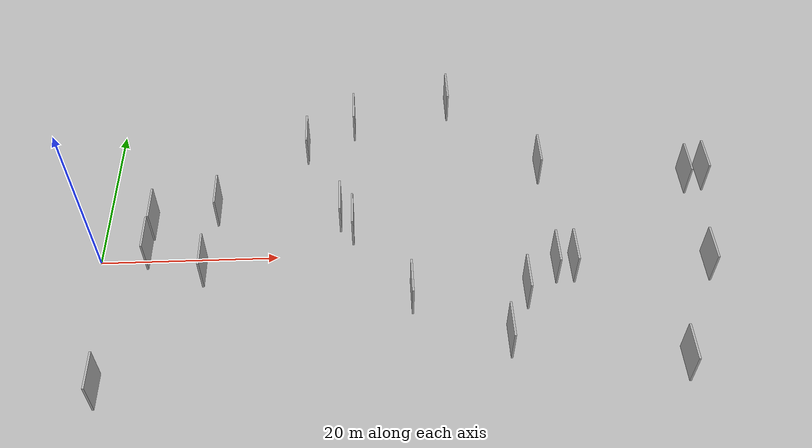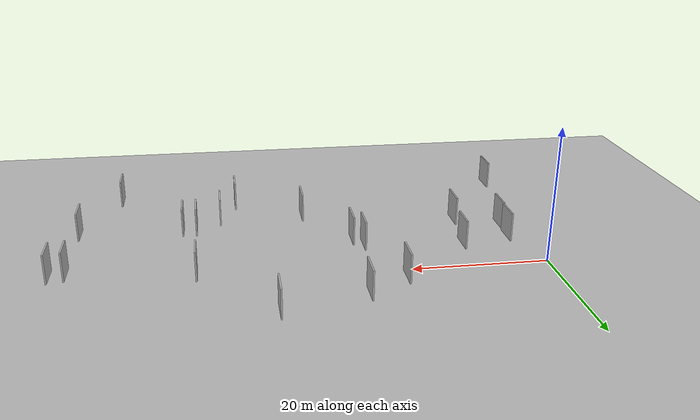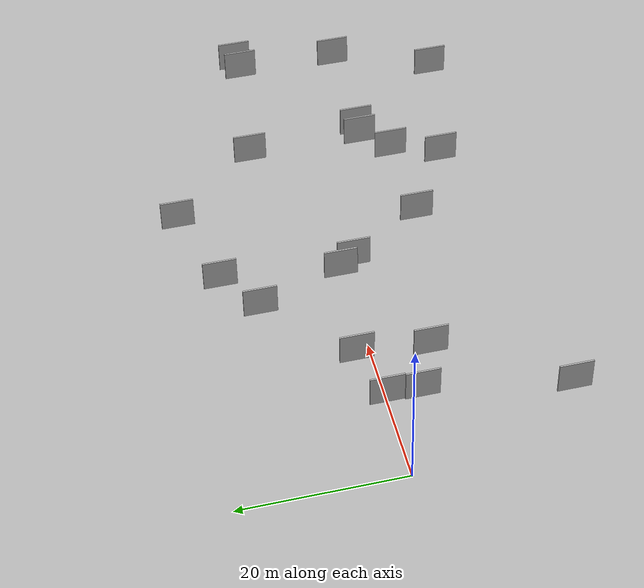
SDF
<?xml version="1.0" encoding="utf-8"?>

<sdf version="1.6">

   <world name="default">

      <gui fullscreen="0">

         <camera name="user_camera">

            <pose>-15 0 4.57585 0 0 0</pose>

            <view_controller>orbit</view_controller>

         </camera>

      </gui>

      <scene>

         <sky>

           <clouds>

             <speed>12</speed>

           </clouds>

         </sky>

         <ambient>0.4 0.4 0.4 1</ambient>

         <background>0.7 0.7 0.7 1</background>

         <shadows>1</shadows>

      </scene>

      <gravity>0 0 -9.8066</gravity>

      <magnetic_field>6e-06 2.3e-05 -4.2e-05</magnetic_field>

      <physics default="0" name="default_physics" type="ode">

         <ode>

            <solver>

               <type>quick</type>

               <iters>10</iters>

               <sor>1.0</sor>

               <use_dynamic_moi_rescaling>0</use_dynamic_moi_rescaling>

            </solver>

            <constraints>

               <cfm>0</cfm>

               <erp>0.2</erp>

               <contact_max_correcting_vel>100</contact_max_correcting_vel>

               <contact_surface_layer>0.001</contact_surface_layer>

            </constraints>

         </ode>

         <max_step_size>0.004</max_step_size>

         <real_time_factor>1</real_time_factor>

         <real_time_update_rate>250</real_time_update_rate>

      </physics>

      <light name="sun" type="directional">

         <cast_shadows>1</cast_shadows>

         <pose>0 0 10 0 0 0</pose>

         <diffuse>0.8 0.8 0.8 1</diffuse>

         <specular>0.2 0.2 0.2 1</specular>

         <attenuation>

            <range>1000</range>

            <constant>0.9</constant>

            <linear>0.01</linear>

            <quadratic>0.001</quadratic>

         </attenuation>

         <direction>-0.5 0.1 -0.9</direction>

      </light>

      <include>

         <name>ground_plane_1</name>

         <uri>model://HANNAS_ground_plane</uri>

         <pose>0 0 0  0 0 0</pose>

      </include>

      <include>

         <name>ground_plane_2</name>

         <uri>model://HANNAS_ground_plane</uri>

         <pose>100 0 0  0 0 0</pose>

      </include>

      <model name="HANNAS_wall_1">

         <static>1</static>

         <pose frame="">46.5897 -9.6157 5.0 0.000000 0.000000 1.570796</pose>

         <link name="link">

            <pose frame="">0 0 2.00 0 0 0</pose>

            <collision name="collision">

               <geometry>

                  <box>

                     <size>4.00 0.2 4.00</size>

                  </box>

               </geometry>

               <max_contacts>10</max_contacts>

               <surface>

                  <contact>

                     <ode/>

                  </contact>

                  <bounce/>

                  <friction>

                     <torsional>

                        <ode/>

                     </torsional>

                     <ode/>

                  </friction>

               </surface>

            </collision>

            <visual name="visual">

               <cast_shadows>0</cast_shadows>

               <geometry>

                  <box>

                     <size>4.00 0.2 4.00</size>

                  </box>

               </geometry>

               <material>

                  <script>

                     <uri>model://HANNAS_wall/materials/scripts</uri>

                     <uri>model://HANNAS_wall/materials/textures</uri>

                     <name>vrc/HANNAS_wall</name>

                  </script>

               </material>

            </visual>

            <self_collide>0</self_collide>

            <enable_wind>0</enable_wind>

            <kinematic>0</kinematic>

         </link>

      </model>

      <model name="HANNAS_wall_2">

         <static>1</static>

         <pose frame="">51.8691 -6.4325 5.0 0.000000 0.000000 1.570796</pose>

         <link name="link">

            <pose frame="">0 0 2.00 0 0 0</pose>

            <collision name="collision">

               <geometry>

                  <box>

                     <size>4.00 0.2 4.00</size>

                  </box>

               </geometry>

               <max_contacts>10</max_contacts>

               <surface>

                  <contact>

                     <ode/>

                  </contact>

                  <bounce/>

                  <friction>

                     <torsional>

                        <ode/>

                     </torsional>

                     <ode/>

                  </friction>

               </surface>

            </collision>

            <visual name="visual">

               <cast_shadows>0</cast_shadows>

               <geometry>

                  <box>

                     <size>4.00 0.2 4.00</size>

                  </box>

               </geometry>

               <material>

                  <script>

                     <uri>model://HANNAS_wall/materials/scripts</uri>

                     <uri>model://HANNAS_wall/materials/textures</uri>

                     <name>vrc/HANNAS_wall</name>

                  </script>

               </material>

            </visual>

            <self_collide>0</self_collide>

            <enable_wind>0</enable_wind>

            <kinematic>0</kinematic>

         </link>

      </model>

      <model name="HANNAS_wall_3">

         <static>1</static>

         <pose frame="">12.9789 -5.5692 5.0 0.000000 0.000000 1.570796</pose>

         <link name="link">

            <pose frame="">0 0 2.00 0 0 0</pose>

            <collision name="collision">

               <geometry>

                  <box>

                     <size>4.00 0.2 4.00</size>

                  </box>

               </geometry>

               <max_contacts>10</max_contacts>

               <surface>

                  <contact>

                     <ode/>

                  </contact>

                  <bounce/>

                  <friction>

                     <torsional>

                        <ode/>

                     </torsional>

                     <ode/>

                  </friction>

               </surface>

            </collision>

            <visual name="visual">

               <cast_shadows>0</cast_shadows>

               <geometry>

                  <box>

                     <size>4.00 0.2 4.00</size>

                  </box>

               </geometry>

               <material>

                  <script>

                     <uri>model://HANNAS_wall/materials/scripts</uri>

                     <uri>model://HANNAS_wall/materials/textures</uri>

                     <name>vrc/HANNAS_wall</name>

                  </script>

               </material>

            </visual>

            <self_collide>0</self_collide>

            <enable_wind>0</enable_wind>

            <kinematic>0</kinematic>

         </link>

      </model>

      <model name="HANNAS_wall_4">

         <static>1</static>

         <pose frame="">3.8547 -19.6435 5.0 0.000000 0.000000 1.570796</pose>

         <link name="link">

            <pose frame="">0 0 2.00 0 0 0</pose>

            <collision name="collision">

               <geometry>

                  <box>

                     <size>4.00 0.2 4.00</size>

                  </box>

               </geometry>

               <max_contacts>10</max_contacts>

               <surface>

                  <contact>

                     <ode/>

                  </contact>

                  <bounce/>

                  <friction>

                     <torsional>

                        <ode/>

                     </torsional>

                     <ode/>

                  </friction>

               </surface>

            </collision>

            <visual name="visual">

               <cast_shadows>0</cast_shadows>

               <geometry>

                  <box>

                     <size>4.00 0.2 4.00</size>

                  </box>

               </geometry>

               <material>

                  <script>

                     <uri>model://HANNAS_wall/materials/scripts</uri>

                     <uri>model://HANNAS_wall/materials/textures</uri>

                     <name>vrc/HANNAS_wall</name>

                  </script>

               </material>

            </visual>

            <self_collide>0</self_collide>

            <enable_wind>0</enable_wind>

            <kinematic>0</kinematic>

         </link>

      </model>

      <model name="HANNAS_wall_5">

         <static>1</static>

         <pose frame="">29.0336 15.4790 5.0 0.000000 0.000000 1.570796</pose>

         <link name="link">

            <pose frame="">0 0 2.00 0 0 0</pose>

            <collision name="collision">

               <geometry>

                  <box>

                     <size>4.00 0.2 4.00</size>

                  </box>

               </geometry>

               <max_contacts>10</max_contacts>

               <surface>

                  <contact>

                     <ode/>

                  </contact>

                  <bounce/>

                  <friction>

                     <torsional>

                        <ode/>

                     </torsional>

                     <ode/>

                  </friction>

               </surface>

            </collision>

            <visual name="visual">

               <cast_shadows>0</cast_shadows>

               <geometry>

                  <box>

                     <size>4.00 0.2 4.00</size>

                  </box>

               </geometry>

               <material>

                  <script>

                     <uri>model://HANNAS_wall/materials/scripts</uri>

                     <uri>model://HANNAS_wall/materials/textures</uri>

                     <name>vrc/HANNAS_wall</name>

                  </script>

               </material>

            </visual>

            <self_collide>0</self_collide>

            <enable_wind>0</enable_wind>

            <kinematic>0</kinematic>

         </link>

      </model>

      <model name="HANNAS_wall_6">

         <static>1</static>

         <pose frame="">66.1604 -6.7629 5.0 0.000000 0.000000 1.570796</pose>

         <link name="link">

            <pose frame="">0 0 2.00 0 0 0</pose>

            <collision name="collision">

               <geometry>

                  <box>

                     <size>4.00 0.2 4.00</size>

                  </box>

               </geometry>

               <max_contacts>10</max_contacts>

               <surface>

                  <contact>

                     <ode/>

                  </contact>

                  <bounce/>

                  <friction>

                     <torsional>

                        <ode/>

                     </torsional>

                     <ode/>

                  </friction>

               </surface>

            </collision>

            <visual name="visual">

               <cast_shadows>0</cast_shadows>

               <geometry>

                  <box>

                     <size>4.00 0.2 4.00</size>

                  </box>

               </geometry>

               <material>

                  <script>

                     <uri>model://HANNAS_wall/materials/scripts</uri>

                     <uri>model://HANNAS_wall/materials/textures</uri>

                     <name>vrc/HANNAS_wall</name>

                  </script>

               </material>

            </visual>

            <self_collide>0</self_collide>

            <enable_wind>0</enable_wind>

            <kinematic>0</kinematic>

         </link>

      </model>

      <model name="HANNAS_wall_7">

         <static>1</static>

         <pose frame="">28.7268 -0.4968 5.0 0.000000 0.000000 1.570796</pose>

         <link name="link">

            <pose frame="">0 0 2.00 0 0 0</pose>

            <collision name="collision">

               <geometry>

                  <box>

                     <size>4.00 0.2 4.00</size>

                  </box>

               </geometry>

               <max_contacts>10</max_contacts>

               <surface>

                  <contact>

                     <ode/>

                  </contact>

                  <bounce/>

                  <friction>

                     <torsional>

                        <ode/>

                     </torsional>

                     <ode/>

                  </friction>

               </surface>

            </collision>

            <visual name="visual">

               <cast_shadows>0</cast_shadows>

               <geometry>

                  <box>

                     <size>4.00 0.2 4.00</size>

                  </box>

               </geometry>

               <material>

                  <script>

                     <uri>model://HANNAS_wall/materials/scripts</uri>

                     <uri>model://HANNAS_wall/materials/textures</uri>

                     <name>vrc/HANNAS_wall</name>

                  </script>

               </material>

            </visual>

            <self_collide>0</self_collide>

            <enable_wind>0</enable_wind>

            <kinematic>0</kinematic>

         </link>

      </model>

      <model name="HANNAS_wall_8">

         <static>1</static>

         <pose frame="">44.2396 -15.4616 5.0 0.000000 0.000000 1.570796</pose>

         <link name="link">

            <pose frame="">0 0 2.00 0 0 0</pose>

            <collision name="collision">

               <geometry>

                  <box>

                     <size>4.00 0.2 4.00</size>

                  </box>

               </geometry>

               <max_contacts>10</max_contacts>

               <surface>

                  <contact>

                     <ode/>

                  </contact>

                  <bounce/>

                  <friction>

                     <torsional>

                        <ode/>

                     </torsional>

                     <ode/>

                  </friction>

               </surface>

            </collision>

            <visual name="visual">

               <cast_shadows>0</cast_shadows>

               <geometry>

                  <box>

                     <size>4.00 0.2 4.00</size>

                  </box>

               </geometry>

               <material>

                  <script>

                     <uri>model://HANNAS_wall/materials/scripts</uri>

                     <uri>model://HANNAS_wall/materials/textures</uri>

                     <name>vrc/HANNAS_wall</name>

                  </script>

               </material>

            </visual>

            <self_collide>0</self_collide>

            <enable_wind>0</enable_wind>

            <kinematic>0</kinematic>

         </link>

      </model>

      <model name="HANNAS_wall_9">

         <static>1</static>

         <pose frame="">23.6025 11.8069 5.0 0.000000 0.000000 1.570796</pose>

         <link name="link">

            <pose frame="">0 0 2.00 0 0 0</pose>

            <collision name="collision">

               <geometry>

                  <box>

                     <size>4.00 0.2 4.00</size>

                  </box>

               </geometry>

               <max_contacts>10</max_contacts>

               <surface>

                  <contact>

                     <ode/>

                  </contact>

                  <bounce/>

                  <friction>

                     <torsional>

                        <ode/>

                     </torsional>

                     <ode/>

                  </friction>

               </surface>

            </collision>

            <visual name="visual">

               <cast_shadows>0</cast_shadows>

               <geometry>

                  <box>

                     <size>4.00 0.2 4.00</size>

                  </box>

               </geometry>

               <material>

                  <script>

                     <uri>model://HANNAS_wall/materials/scripts</uri>

                     <uri>model://HANNAS_wall/materials/textures</uri>

                     <name>vrc/HANNAS_wall</name>

                  </script>

               </material>

            </visual>

            <self_collide>0</self_collide>

            <enable_wind>0</enable_wind>

            <kinematic>0</kinematic>

         </link>

      </model>

      <model name="HANNAS_wall_10">

         <static>1</static>

         <pose frame="">34.7187 -9.7975 5.0 0.000000 0.000000 1.570796</pose>

         <link name="link">

            <pose frame="">0 0 2.00 0 0 0</pose>

            <collision name="collision">

               <geometry>

                  <box>

                     <size>4.00 0.2 4.00</size>

                  </box>

               </geometry>

               <max_contacts>10</max_contacts>

               <surface>

                  <contact>

                     <ode/>

                  </contact>

                  <bounce/>

                  <friction>

                     <torsional>

                        <ode/>

                     </torsional>

                     <ode/>

                  </friction>

               </surface>

            </collision>

            <visual name="visual">

               <cast_shadows>0</cast_shadows>

               <geometry>

                  <box>

                     <size>4.00 0.2 4.00</size>

                  </box>

               </geometry>

               <material>

                  <script>

                     <uri>model://HANNAS_wall/materials/scripts</uri>

                     <uri>model://HANNAS_wall/materials/textures</uri>

                     <name>vrc/HANNAS_wall</name>

                  </script>

               </material>

            </visual>

            <self_collide>0</self_collide>

            <enable_wind>0</enable_wind>

            <kinematic>0</kinematic>

         </link>

      </model>

      <model name="HANNAS_wall_11">

         <static>1</static>

         <pose frame="">40.2103 18.5304 5.0 0.000000 0.000000 1.570796</pose>

         <link name="link">

            <pose frame="">0 0 2.00 0 0 0</pose>

            <collision name="collision">

               <geometry>

                  <box>

                     <size>4.00 0.2 4.00</size>

                  </box>

               </geometry>

               <max_contacts>10</max_contacts>

               <surface>

                  <contact>

                     <ode/>

                  </contact>

                  <bounce/>

                  <friction>

                     <torsional>

                        <ode/>

                     </torsional>

                     <ode/>

                  </friction>

               </surface>

            </collision>

            <visual name="visual">

               <cast_shadows>0</cast_shadows>

               <geometry>

                  <box>

                     <size>4.00 0.2 4.00</size>

                  </box>

               </geometry>

               <material>

                  <script>

                     <uri>model://HANNAS_wall/materials/scripts</uri>

                     <uri>model://HANNAS_wall/materials/textures</uri>

                     <name>vrc/HANNAS_wall</name>

                  </script>

               </material>

            </visual>

            <self_collide>0</self_collide>

            <enable_wind>0</enable_wind>

            <kinematic>0</kinematic>

         </link>

      </model>

      <model name="HANNAS_wall_12">

         <static>1</static>

         <pose frame="">13.8999 2.7781 5.0 0.000000 0.000000 1.570796</pose>

         <link name="link">

            <pose frame="">0 0 2.00 0 0 0</pose>

            <collision name="collision">

               <geometry>

                  <box>

                     <size>4.00 0.2 4.00</size>

                  </box>

               </geometry>

               <max_contacts>10</max_contacts>

               <surface>

                  <contact>

                     <ode/>

                  </contact>

                  <bounce/>

                  <friction>

                     <torsional>

                        <ode/>

                     </torsional>

                     <ode/>

                  </friction>

               </surface>

            </collision>

            <visual name="visual">

               <cast_shadows>0</cast_shadows>

               <geometry>

                  <box>

                     <size>4.00 0.2 4.00</size>

                  </box>

               </geometry>

               <material>

                  <script>

                     <uri>model://HANNAS_wall/materials/scripts</uri>

                     <uri>model://HANNAS_wall/materials/textures</uri>

                     <name>vrc/HANNAS_wall</name>

                  </script>

               </material>

            </visual>

            <self_collide>0</self_collide>

            <enable_wind>0</enable_wind>

            <kinematic>0</kinematic>

         </link>

      </model>

      <model name="HANNAS_wall_13">

         <static>1</static>

         <pose frame="">49.9307 7.6581 5.0 0.000000 0.000000 1.570796</pose>

         <link name="link">

            <pose frame="">0 0 2.00 0 0 0</pose>

            <collision name="collision">

               <geometry>

                  <box>

                     <size>4.00 0.2 4.00</size>

                  </box>

               </geometry>

               <max_contacts>10</max_contacts>

               <surface>

                  <contact>

                     <ode/>

                  </contact>

                  <bounce/>

                  <friction>

                     <torsional>

                        <ode/>

                     </torsional>

                     <ode/>

                  </friction>

               </surface>

            </collision>

            <visual name="visual">

               <cast_shadows>0</cast_shadows>

               <geometry>

                  <box>

                     <size>4.00 0.2 4.00</size>

                  </box>

               </geometry>

               <material>

                  <script>

                     <uri>model://HANNAS_wall/materials/scripts</uri>

                     <uri>model://HANNAS_wall/materials/textures</uri>

                     <name>vrc/HANNAS_wall</name>

                  </script>

               </material>

            </visual>

            <self_collide>0</self_collide>

            <enable_wind>0</enable_wind>

            <kinematic>0</kinematic>

         </link>

      </model>

      <model name="HANNAS_wall_14">

         <static>1</static>

         <pose frame="">61.2396 -18.7305 5.0 0.000000 0.000000 1.570796</pose>

         <link name="link">

            <pose frame="">0 0 2.00 0 0 0</pose>

            <collision name="collision">

               <geometry>

                  <box>

                     <size>4.00 0.2 4.00</size>

                  </box>

               </geometry>

               <max_contacts>10</max_contacts>

               <surface>

                  <contact>

                     <ode/>

                  </contact>

                  <bounce/>

                  <friction>

                     <torsional>

                        <ode/>

                     </torsional>

                     <ode/>

                  </friction>

               </surface>

            </collision>

            <visual name="visual">

               <cast_shadows>0</cast_shadows>

               <geometry>

                  <box>

                     <size>4.00 0.2 4.00</size>

                  </box>

               </geometry>

               <material>

                  <script>

                     <uri>model://HANNAS_wall/materials/scripts</uri>

                     <uri>model://HANNAS_wall/materials/textures</uri>

                     <name>vrc/HANNAS_wall</name>

                  </script>

               </material>

            </visual>

            <self_collide>0</self_collide>

            <enable_wind>0</enable_wind>

            <kinematic>0</kinematic>

         </link>

      </model>

      <model name="HANNAS_wall_15">

         <static>1</static>

         <pose frame="">7.0506 1.0303 5.0 0.000000 0.000000 1.570796</pose>

         <link name="link">

            <pose frame="">0 0 2.00 0 0 0</pose>

            <collision name="collision">

               <geometry>

                  <box>

                     <size>4.00 0.2 4.00</size>

                  </box>

               </geometry>

               <max_contacts>10</max_contacts>

               <surface>

                  <contact>

                     <ode/>

                  </contact>

                  <bounce/>

                  <friction>

                     <torsional>

                        <ode/>

                     </torsional>

                     <ode/>

                  </friction>

               </surface>

            </collision>

            <visual name="visual">

               <cast_shadows>0</cast_shadows>

               <geometry>

                  <box>

                     <size>4.00 0.2 4.00</size>

                  </box>

               </geometry>

               <material>

                  <script>

                     <uri>model://HANNAS_wall/materials/scripts</uri>

                     <uri>model://HANNAS_wall/materials/textures</uri>

                     <name>vrc/HANNAS_wall</name>

                  </script>

               </material>

            </visual>

            <self_collide>0</self_collide>

            <enable_wind>0</enable_wind>

            <kinematic>0</kinematic>

         </link>

      </model>

      <model name="HANNAS_wall_16">

         <static>1</static>

         <pose frame="">27.3882 1.3855 5.0 0.000000 0.000000 1.570796</pose>

         <link name="link">

            <pose frame="">0 0 2.00 0 0 0</pose>

            <collision name="collision">

               <geometry>

                  <box>

                     <size>4.00 0.2 4.00</size>

                  </box>

               </geometry>

               <max_contacts>10</max_contacts>

               <surface>

                  <contact>

                     <ode/>

                  </contact>

                  <bounce/>

                  <friction>

                     <torsional>

                        <ode/>

                     </torsional>

                     <ode/>

                  </friction>

               </surface>

            </collision>

            <visual name="visual">

               <cast_shadows>0</cast_shadows>

               <geometry>

                  <box>

                     <size>4.00 0.2 4.00</size>

                  </box>

               </geometry>

               <material>

                  <script>

                     <uri>model://HANNAS_wall/materials/scripts</uri>

                     <uri>model://HANNAS_wall/materials/textures</uri>

                     <name>vrc/HANNAS_wall</name>

                  </script>

               </material>

            </visual>

            <self_collide>0</self_collide>

            <enable_wind>0</enable_wind>

            <kinematic>0</kinematic>

         </link>

      </model>

      <model name="HANNAS_wall_17">

         <static>1</static>

         <pose frame="">49.9851 -6.4682 5.0 0.000000 0.000000 1.570796</pose>

         <link name="link">

            <pose frame="">0 0 2.00 0 0 0</pose>

            <collision name="collision">

               <geometry>

                  <box>

                     <size>4.00 0.2 4.00</size>

                  </box>

               </geometry>

               <max_contacts>10</max_contacts>

               <surface>

                  <contact>

                     <ode/>

                  </contact>

                  <bounce/>

                  <friction>

                     <torsional>

                        <ode/>

                     </torsional>

                     <ode/>

                  </friction>

               </surface>

            </collision>

            <visual name="visual">

               <cast_shadows>0</cast_shadows>

               <geometry>

                  <box>

                     <size>4.00 0.2 4.00</size>

                  </box>

               </geometry>

               <material>

                  <script>

                     <uri>model://HANNAS_wall/materials/scripts</uri>

                     <uri>model://HANNAS_wall/materials/textures</uri>

                     <name>vrc/HANNAS_wall</name>

                  </script>

               </material>

            </visual>

            <self_collide>0</self_collide>

            <enable_wind>0</enable_wind>

            <kinematic>0</kinematic>

         </link>

      </model>

      <model name="HANNAS_wall_18">

         <static>1</static>

         <pose frame="">68.4308 5.9860 5.0 0.000000 0.000000 1.570796</pose>

         <link name="link">

            <pose frame="">0 0 2.00 0 0 0</pose>

            <collision name="collision">

               <geometry>

                  <box>

                     <size>4.00 0.2 4.00</size>

                  </box>

               </geometry>

               <max_contacts>10</max_contacts>

               <surface>

                  <contact>

                     <ode/>

                  </contact>

                  <bounce/>

                  <friction>

                     <torsional>

                        <ode/>

                     </torsional>

                     <ode/>

                  </friction>

               </surface>

            </collision>

            <visual name="visual">

               <cast_shadows>0</cast_shadows>

               <geometry>

                  <box>

                     <size>4.00 0.2 4.00</size>

                  </box>

               </geometry>

               <material>

                  <script>

                     <uri>model://HANNAS_wall/materials/scripts</uri>

                     <uri>model://HANNAS_wall/materials/textures</uri>

                     <name>vrc/HANNAS_wall</name>

                  </script>

               </material>

            </visual>

            <self_collide>0</self_collide>

            <enable_wind>0</enable_wind>

            <kinematic>0</kinematic>

         </link>

      </model>

      <model name="HANNAS_wall_19">

         <static>1</static>

         <pose frame="">66.3698 5.5886 5.0 0.000000 0.000000 1.570796</pose>

         <link name="link">

            <pose frame="">0 0 2.00 0 0 0</pose>

            <collision name="collision">

               <geometry>

                  <box>

                     <size>4.00 0.2 4.00</size>

                  </box>

               </geometry>

               <max_contacts>10</max_contacts>

               <surface>

                  <contact>

                     <ode/>

                  </contact>

                  <bounce/>

                  <friction>

                     <torsional>

                        <ode/>

                     </torsional>

                     <ode/>

                  </friction>

               </surface>

            </collision>

            <visual name="visual">

               <cast_shadows>0</cast_shadows>

               <geometry>

                  <box>

                     <size>4.00 0.2 4.00</size>

                  </box>

               </geometry>

               <material>

                  <script>

                     <uri>model://HANNAS_wall/materials/scripts</uri>

                     <uri>model://HANNAS_wall/materials/textures</uri>

                     <name>vrc/HANNAS_wall</name>

                  </script>

               </material>

            </visual>

            <self_collide>0</self_collide>

            <enable_wind>0</enable_wind>

            <kinematic>0</kinematic>

         </link>

      </model>

      <model name="HANNAS_wall_20">

         <static>1</static>

         <pose frame="">6.8813 -2.9836 5.0 0.000000 0.000000 1.570796</pose>

         <link name="link">

            <pose frame="">0 0 2.00 0 0 0</pose>

            <collision name="collision">

               <geometry>

                  <box>

                     <size>4.00 0.2 4.00</size>

                  </box>

               </geometry>

               <max_contacts>10</max_contacts>

               <surface>

                  <contact>

                     <ode/>

                  </contact>

                  <bounce/>

                  <friction>

                     <torsional>

                        <ode/>

                     </torsional>

                     <ode/>

                  </friction>

               </surface>

            </collision>

            <visual name="visual">

               <cast_shadows>0</cast_shadows>

               <geometry>

                  <box>

                     <size>4.00 0.2 4.00</size>

                  </box>

               </geometry>

               <material>

                  <script>

                     <uri>model://HANNAS_wall/materials/scripts</uri>

                     <uri>model://HANNAS_wall/materials/textures</uri>

                     <name>vrc/HANNAS_wall</name>

                  </script>

               </material>

            </visual>

            <self_collide>0</self_collide>

            <enable_wind>0</enable_wind>

            <kinematic>0</kinematic>

         </link>

      </model>

   </world>

</sdf>

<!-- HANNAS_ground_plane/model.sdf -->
<sdf version="1.4">
<model name="HANNAS_ground_plane">
  <static>true</static>
    <link name="link">
      <collision name="collision">
        <geometry>
          <plane>
            <normal>0 0 1</normal>
            <size>1000 1000</size>
          </plane>
        </geometry>
        <surface>
          <friction>
            <ode>
              <mu>100</mu>
              <mu2>50</mu2>
            </ode>
          </friction>
        </surface>
      </collision>
      <visual name="visual">
        <cast_shadows>false</cast_shadows>
        <geometry>
          <plane>
            <normal>0 0 1</normal>
            <size>1000 1000</size>
          </plane>
        </geometry>
        <material>
          <script>
            <uri>model://HANNAS_ground_plane/materials/scripts/HANNAS_ground_plane.material</uri>
	    <uri>model://HANNAS_ground_plane/materials/textures</uri>
            <name>HANNASGroundPlane/Image</name>
          </script>
        </material>
      </visual>
    </link>
  </model>
</sdf>
